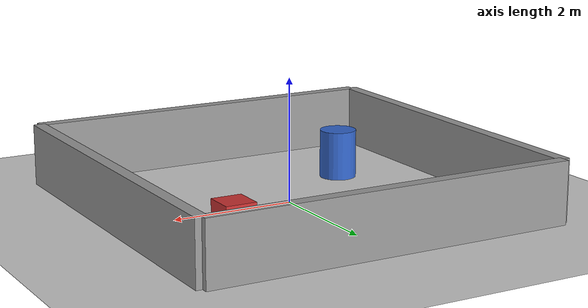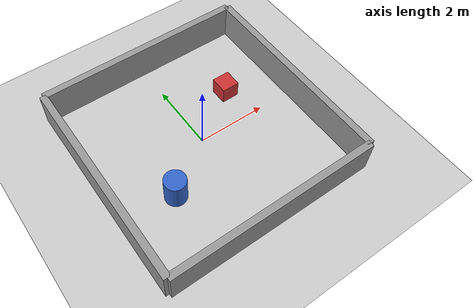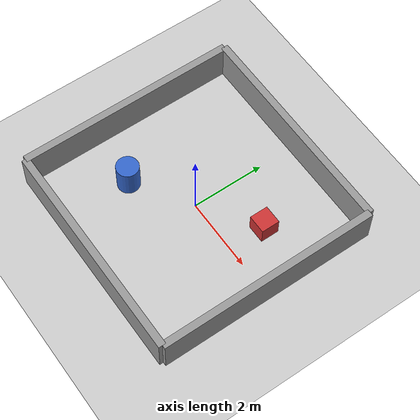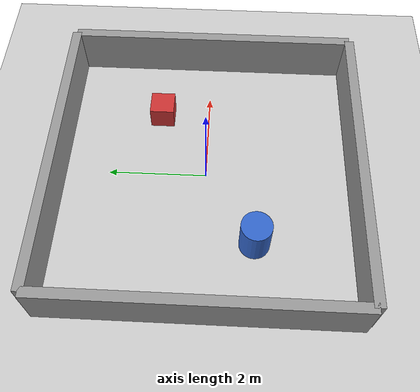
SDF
<?xml version="1.0" ?>
<sdf version="1.6">
  <world name="default">

    <include>
      <uri>model://ground_plane</uri>
    </include>

    <include>
      <uri>model://sun</uri>
    </include>

    <physics type="ode">
      <real_time_update_rate>1000.0</real_time_update_rate>
      <max_step_size>0.001</max_step_size>
      <real_time_factor>1</real_time_factor>
    </physics>

    <model name="wall_north">
      <static>true</static>
      <pose>0 3 0.5 0 0 0</pose>
      <link name="link">
        <collision name="collision">
          <geometry><box><size>6 0.2 1</size></box></geometry>
        </collision>
        <visual name="visual">
          <geometry><box><size>6 0.2 1</size></box></geometry>
          <material><ambient>0.6 0.6 0.6 1</ambient></material>
        </visual>
      </link>
    </model>

    <model name="wall_south">
      <static>true</static>
      <pose>0 -3 0.5 0 0 0</pose>
      <link name="link">
        <collision name="collision">
          <geometry><box><size>6 0.2 1</size></box></geometry>
        </collision>
        <visual name="visual">
          <geometry><box><size>6 0.2 1</size></box></geometry>
          <material><ambient>0.6 0.6 0.6 1</ambient></material>
        </visual>
      </link>
    </model>

    <model name="wall_east">
      <static>true</static>
      <pose>3 0 0.5 0 0 1.5708</pose>
      <link name="link">
        <collision name="collision">
          <geometry><box><size>6 0.2 1</size></box></geometry>
        </collision>
        <visual name="visual">
          <geometry><box><size>6 0.2 1</size></box></geometry>
          <material><ambient>0.6 0.6 0.6 1</ambient></material>
        </visual>
      </link>
    </model>

    <model name="wall_west">
      <static>true</static>
      <pose>-3 0 0.5 0 0 1.5708</pose>
      <link name="link">
        <collision name="collision">
          <geometry><box><size>6 0.2 1</size></box></geometry>
        </collision>
        <visual name="visual">
          <geometry><box><size>6 0.2 1</size></box></geometry>
          <material><ambient>0.6 0.6 0.6 1</ambient></material>
        </visual>
      </link>
    </model>

    <model name="box_obstacle_1">
      <static>true</static>
      <pose>1.5 1 0.25 0 0 0</pose>
      <link name="link">
        <collision name="collision">
          <geometry><box><size>0.5 0.5 0.5</size></box></geometry>
        </collision>
        <visual name="visual">
          <geometry><box><size>0.5 0.5 0.5</size></box></geometry>
          <material><ambient>0.8 0.2 0.2 1</ambient></material>
        </visual>
      </link>
    </model>

    <model name="cylinder_obstacle_1">
      <static>true</static>
      <pose>-1.5 -1 0.4 0 0 0</pose>
      <link name="link">
        <collision name="collision">
          <geometry><cylinder><radius>0.3</radius><length>0.8</length></cylinder></geometry>
        </collision>
        <visual name="visual">
          <geometry><cylinder><radius>0.3</radius><length>0.8</length></cylinder></geometry>
          <material><ambient>0.2 0.4 0.8 1</ambient></material>
        </visual>
      </link>
    </model>

  </world>
</sdf>
